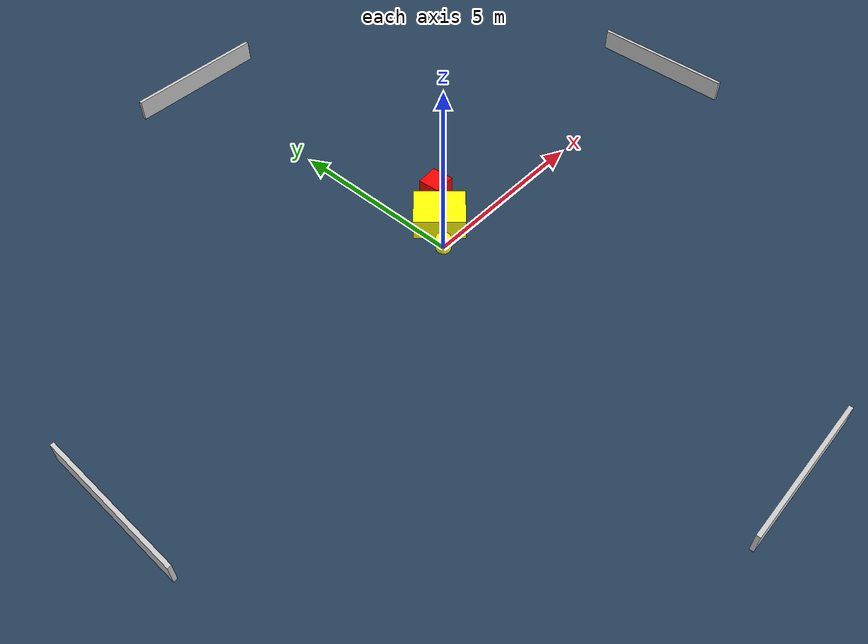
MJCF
<?xml version="1.0" ?>
<mujoco model="generated_environment">
  <option timestep="0.01" integrator="RK4" cone="elliptic"/>
  <default>
    <geom density="1"/>
  </default>
  <asset>
    <texture builtin="gradient" height="3072" name="skybox" rgb1="0.3 0.5 0.7" rgb2="0 0 0" type="skybox" width="512"/>
    <texture builtin="checker" height="300" name="groundplane" rgb1="0.2 0.3 0.4" rgb2="0.1 0.2 0.3" type="2d" width="300"/>
    <material name="groundplane" reflectance="0.2" texrepeat="5 5" texture="groundplane"/>
  </asset>
  <worldbody>
    <light dir="0 0 -1" directional="true" pos="0 0 1.5"/>
    <geom condim="3" friction="0.5 0.005 0.001" material="groundplane" name="floor" pos="0 0 0" size="0 0 0.05" type="plane"/>
    <body name="walls">
      <geom name="wall_1" condim="4" pos="-10.0 0.0 0.3" rgba="0.800000011920929 0.800000011920929 0.800000011920929 1.0" size="0.05 2.0 0.3" type="box"/>
      <geom name="wall_2" condim="4" pos="10.0 0.0 0.3" rgba="0.800000011920929 0.800000011920929 0.800000011920929 1.0" size="0.05 2.0 0.3" type="box"/>
      <geom name="wall_3" condim="4" pos="0.0 -10.0 0.3" rgba="0.800000011920929 0.800000011920929 0.800000011920929 1.0" size="2.0 0.05 0.3" type="box"/>
      <geom name="wall_4" condim="4" pos="0.0 10.0 0.3" rgba="0.800000011920929 0.800000011920929 0.800000011920929 1.0" size="2.0 0.05 0.3" type="box"/>
    </body>
    <body name="robot">
      <joint name="joint_x" type="slide" pos="0 0 0" axis="1 0 0"/>
      <joint name="joint_y" type="slide" pos="0 0 0" axis="0 1 0"/>
      <geom name="robot" type="cylinder" pos="0.0 0.0 0.2" size="0.2 0.2 0.0" mass="5.0" friction="1.0 0.005 0.0001" condim="4" rgba="1.0 1.0 0.0 1.0"/>
    </body>
    <body name="obstacle_1_movable">
      <geom name="obstacle_1_movable" condim="4" pos="0.6247338070639898 0.694396373995954 0.3" euler="0 0 42.04541656708597" friction="0.0 0.005 0.001" rgba="1.0 1.0 0.0 1.0" size="0.5726641324024179 0.6850534398784978 0.3" type="box" mass="0.1"/>
      <joint type="free"/>
    </body>
    <body name="obstacle_2_static">
      <geom name="obstacle_2_static" condim="4" pos="1.3072386310240902 1.4437708117257684 0.3" euler="0 0 274.2187404634524" friction="0.0 0.005 0.001" rgba="1.0 0.0 0.0 1.0" size="0.30676508428292004 0.31126172083652925 0.3" type="box"/>
    </body>
  </worldbody>
  <actuator>
    <motor name="actuator_x" joint="joint_x" gear="1" ctrlrange="-1 1"/>
    <motor name="actuator_y" joint="joint_y" gear="1" ctrlrange="-1 1"/>
  </actuator>
</mujoco>
